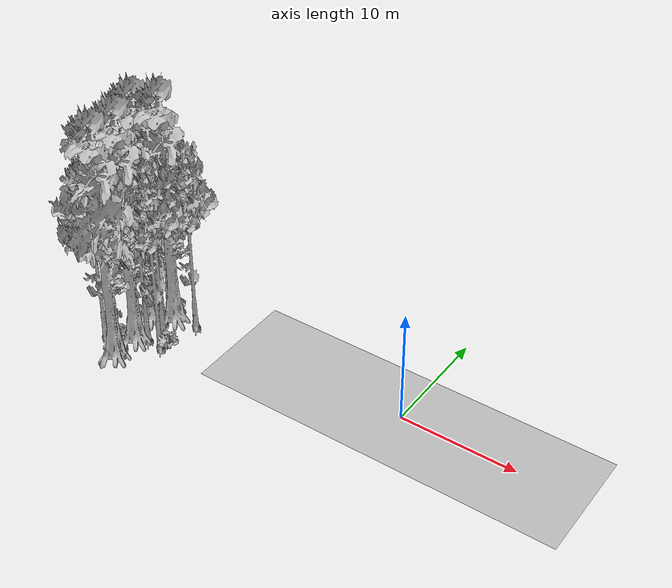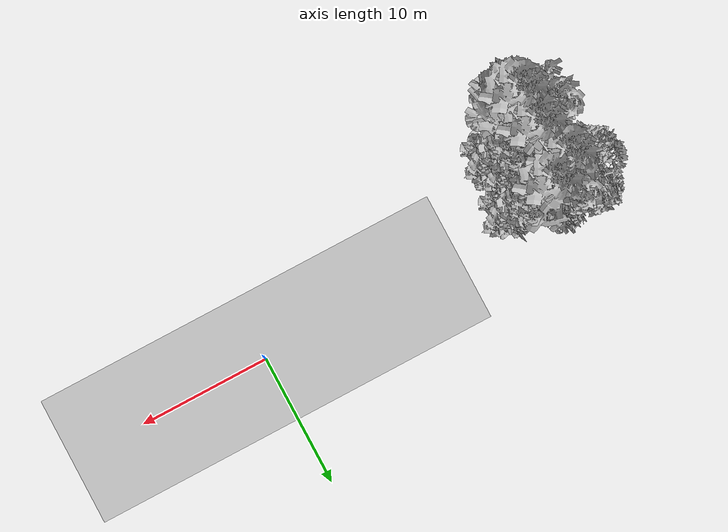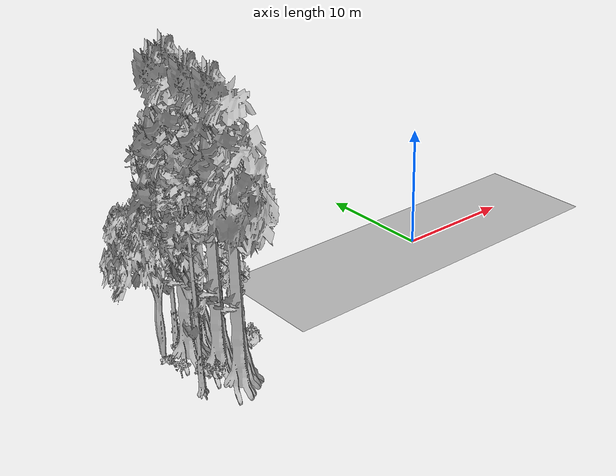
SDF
<sdf version="1.7">
 <world name="default">
  <model name="ground_plane">
   <static>1</static>
   <link name="link">
    <collision name="collision">
     <geometry><plane><normal>0 0 1</normal><size>100 100</size></plane></geometry>
     <surface><contact><ode><min_depth>0.01</min_depth><max_vel>0</max_vel></ode></contact></surface>
    </collision>
    <visual name="grass">
     <cast_shadows>0</cast_shadows>
     <geometry>
      <mesh>
       <scale>0.5814285714285714 0.18142857142857144 0.1</scale>
       <uri>file://grass_plane/meshes/grass_plane.dae</uri>
      </mesh>
     </geometry>
    </visual>
   </link>
  </model>
  <model name="Tree 10">
   <static>1</static>
   <pose>-21.879696404630316 -0.82176129421679 0 1.57079 -0 0</pose>
   <link name="link">
    <collision name="collision">
     <geometry><mesh><scale>3.5 5 3.5</scale><uri>model://tree_4/meshes/tree_4.obj</uri></mesh></geometry>
    </collision>
    <visual name="visual">
     <geometry><mesh><scale>3.5 5 3.5</scale><uri>model://tree_4/meshes/tree_4.obj</uri></mesh></geometry>
    </visual>
   </link>
  </model>
  <model name="Tree 22">
   <static>1</static>
   <pose>-21.982610655278286 -4.060572204806526 0 1.57079 -0 0</pose>
   <link name="link">
    <collision name="collision">
     <geometry><mesh><scale>3.5 5 3.5</scale><uri>model://tree_9/meshes/tree_9.obj</uri></mesh></geometry>
    </collision>
    <visual name="visual">
     <geometry><mesh><scale>3.5 5 3.5</scale><uri>model://tree_9/meshes/tree_9.obj</uri></mesh></geometry>
    </visual>
   </link>
  </model>
  <model name="Tree 30">
   <static>1</static>
   <pose>-25.03702476651312 -5.838302485965501 0 1.57079 -0 0</pose>
   <link name="link">
    <collision name="collision">
     <geometry><mesh><scale>3.5 5 3.5</scale><uri>model://tree_9/meshes/tree_9.obj</uri></mesh></geometry>
    </collision>
    <visual name="visual">
     <geometry><mesh><scale>3.5 5 3.5</scale><uri>model://tree_9/meshes/tree_9.obj</uri></mesh></geometry>
    </visual>
   </link>
  </model>
  <model name="Tree 44">
   <static>1</static>
   <pose>-19.851459571074663 -0.49956122231959554 0 1.57079 -0 0</pose>
   <link name="link">
    <collision name="collision">
     <geometry><mesh><scale>3.5 5 3.5</scale><uri>model://tree_9/meshes/tree_9.obj</uri></mesh></geometry>
    </collision>
    <visual name="visual">
     <geometry><mesh><scale>3.5 5 3.5</scale><uri>model://tree_9/meshes/tree_9.obj</uri></mesh></geometry>
    </visual>
   </link>
  </model>
  <model name="Tree 112">
   <static>1</static>
   <pose>-20.499247874361828 -4.275943029662148 0 1.57079 -0 0</pose>
   <link name="link">
    <collision name="collision">
     <geometry><mesh><scale>3.5 5 3.5</scale><uri>model://tree_9/meshes/tree_9.obj</uri></mesh></geometry>
    </collision>
    <visual name="visual">
     <geometry><mesh><scale>3.5 5 3.5</scale><uri>model://tree_9/meshes/tree_9.obj</uri></mesh></geometry>
    </visual>
   </link>
  </model>
  <model name="Tree 161">
   <static>1</static>
   <pose>-21.25542510160768 -2.957124591123323 0 1.57079 -0 0</pose>
   <link name="link">
    <collision name="collision">
     <geometry><mesh><scale>3.5 5 3.5</scale><uri>model://tree_9/meshes/tree_9.obj</uri></mesh></geometry>
    </collision>
    <visual name="visual">
     <geometry><mesh><scale>3.5 5 3.5</scale><uri>model://tree_9/meshes/tree_9.obj</uri></mesh></geometry>
    </visual>
   </link>
  </model>
  <model name="Tree 171">
   <static>1</static>
   <pose>-22.403731817072774 -1.6554641451145908 0 1.57079 -0 0</pose>
   <link name="link">
    <collision name="collision">
     <geometry><mesh><scale>3.5 5 3.5</scale><uri>model://tree_9/meshes/tree_9.obj</uri></mesh></geometry>
    </collision>
    <visual name="visual">
     <geometry><mesh><scale>3.5 5 3.5</scale><uri>model://tree_9/meshes/tree_9.obj</uri></mesh></geometry>
    </visual>
   </link>
  </model>
  <model name="Tree 179">
   <static>1</static>
   <pose>-25.01452560565559 -0.905474790789377 0 1.57079 -0 0</pose>
   <link name="link">
    <collision name="collision">
     <geometry><mesh><scale>3.5 5 3.5</scale><uri>model://tree_2/meshes/tree_2.obj</uri></mesh></geometry>
    </collision>
    <visual name="visual">
     <geometry><mesh><scale>3.5 5 3.5</scale><uri>model://tree_2/meshes/tree_2.obj</uri></mesh></geometry>
    </visual>
   </link>
  </model>
  <model name="Tree 225">
   <static>1</static>
   <pose>-23.257540559129225 0.08763103081743928 0 1.57079 -0 0</pose>
   <link name="link">
    <collision name="collision">
     <geometry><mesh><scale>3.5 5 3.5</scale><uri>model://tree_9/meshes/tree_9.obj</uri></mesh></geometry>
    </collision>
    <visual name="visual">
     <geometry><mesh><scale>3.5 5 3.5</scale><uri>model://tree_9/meshes/tree_9.obj</uri></mesh></geometry>
    </visual>
   </link>
  </model>
  <model name="Tree 300">
   <static>1</static>
   <pose>-22.76598010860878 -7.136607888229324 0 1.57079 -0 0</pose>
   <link name="link">
    <collision name="collision">
     <geometry><mesh><scale>3.5 5 3.5</scale><uri>model://tree_4/meshes/tree_4.obj</uri></mesh></geometry>
    </collision>
    <visual name="visual">
     <geometry><mesh><scale>3.5 5 3.5</scale><uri>model://tree_4/meshes/tree_4.obj</uri></mesh></geometry>
    </visual>
   </link>
  </model>
  <model name="Tree 336">
   <static>1</static>
   <pose>-24.884006157946292 -0.49257256441945607 0 1.57079 -0 0</pose>
   <link name="link">
    <collision name="collision">
     <geometry><mesh><scale>3.5 5 3.5</scale><uri>model://tree_2/meshes/tree_2.obj</uri></mesh></geometry>
    </collision>
    <visual name="visual">
     <geometry><mesh><scale>3.5 5 3.5</scale><uri>model://tree_2/meshes/tree_2.obj</uri></mesh></geometry>
    </visual>
   </link>
  </model>
  <model name="Tree 406">
   <static>1</static>
   <pose>-22.774944266580892 -4.682115500742471 0 1.57079 -0 0</pose>
   <link name="link">
    <collision name="collision">
     <geometry><mesh><scale>3.5 5 3.5</scale><uri>model://tree_4/meshes/tree_4.obj</uri></mesh></geometry>
    </collision>
    <visual name="visual">
     <geometry><mesh><scale>3.5 5 3.5</scale><uri>model://tree_4/meshes/tree_4.obj</uri></mesh></geometry>
    </visual>
   </link>
  </model>
  <model name="Tree 409">
   <static>1</static>
   <pose>-23.51418640622949 -1.9474277549941714 0 1.57079 -0 0</pose>
   <link name="link">
    <collision name="collision">
     <geometry><mesh><scale>3.5 5 3.5</scale><uri>model://tree_4/meshes/tree_4.obj</uri></mesh></geometry>
    </collision>
    <visual name="visual">
     <geometry><mesh><scale>3.5 5 3.5</scale><uri>model://tree_4/meshes/tree_4.obj</uri></mesh></geometry>
    </visual>
   </link>
  </model>
  <model name="Bush 21">
   <static>1</static>
   <pose>-25.09679876955792 -1.701875033062974 0 1.57079 -0 0</pose>
   <link name="link">
    <collision name="collision">
     <geometry><mesh><scale>2 2 2</scale><uri>model://bush_2/meshes/bush_2.obj</uri></mesh></geometry>
     <surface><contact><collide_without_contact>false</collide_without_contact></contact></surface>
    </collision>
    <visual name="visual">
     <geometry><mesh><scale>2 2 2</scale><uri>model://bush_2/meshes/bush_2.obj</uri></mesh></geometry>
    </visual>
   </link>
  </model>
  <model name="Bush 30">
   <static>1</static>
   <pose>-23.551033019146658 -5.708413060450933 0 1.57079 -0 0</pose>
   <link name="link">
    <collision name="collision">
     <geometry><mesh><scale>2 2 2</scale><uri>model://bush_4/meshes/bush_4.obj</uri></mesh></geometry>
     <surface><contact><collide_without_contact>false</collide_without_contact></contact></surface>
    </collision>
    <visual name="visual">
     <geometry><mesh><scale>2 2 2</scale><uri>model://bush_4/meshes/bush_4.obj</uri></mesh></geometry>
    </visual>
   </link>
  </model>
  <model name="Bush 72">
   <static>1</static>
   <pose>-22.46938019415706 0.6222823743175159 0 1.57079 -0 0</pose>
   <link name="link">
    <collision name="collision">
     <geometry><mesh><scale>2 2 2</scale><uri>model://bush_3/meshes/bush_3.obj</uri></mesh></geometry>
     <surface><contact><collide_without_contact>false</collide_without_contact></contact></surface>
    </collision>
    <visual name="visual">
     <geometry><mesh><scale>2 2 2</scale><uri>model://bush_3/meshes/bush_3.obj</uri></mesh></geometry>
    </visual>
   </link>
  </model>
  <model name="Bush 160">
   <static>1</static>
   <pose>-23.728758570296915 -1.3405218024542176 0 1.57079 -0 0</pose>
   <link name="link">
    <collision name="collision">
     <geometry><mesh><scale>2 2 2</scale><uri>model://bush_4/meshes/bush_4.obj</uri></mesh></geometry>
     <surface><contact><collide_without_contact>false</collide_without_contact></contact></surface>
    </collision>
    <visual name="visual">
     <geometry><mesh><scale>2 2 2</scale><uri>model://bush_4/meshes/bush_4.obj</uri></mesh></geometry>
    </visual>
   </link>
  </model>
  <model name="Bush 161">
   <static>1</static>
   <pose>-19.81632243774731 -4.216767249962125 0 1.57079 -0 0</pose>
   <link name="link">
    <collision name="collision">
     <geometry><mesh><scale>2 2 2</scale><uri>model://bush_1/meshes/bush_1.obj</uri></mesh></geometry>
     <surface><contact><collide_without_contact>false</collide_without_contact></contact></surface>
    </collision>
    <visual name="visual">
     <geometry><mesh><scale>2 2 2</scale><uri>model://bush_1/meshes/bush_1.obj</uri></mesh></geometry>
    </visual>
   </link>
  </model>
  <model name="Bush 184">
   <static>1</static>
   <pose>-25.406740120794264 -3.9815098492453096 0 1.57079 -0 0</pose>
   <link name="link">
    <collision name="collision">
     <geometry><mesh><scale>2 2 2</scale><uri>model://bush_5/meshes/bush_5.obj</uri></mesh></geometry>
     <surface><contact><collide_without_contact>false</collide_without_contact></contact></surface>
    </collision>
    <visual name="visual">
     <geometry><mesh><scale>2 2 2</scale><uri>model://bush_5/meshes/bush_5.obj</uri></mesh></geometry>
    </visual>
   </link>
  </model>
  <model name="Bush 213">
   <static>1</static>
   <pose>-23.473290958099952 -3.613391786092807 0 1.57079 -0 0</pose>
   <link name="link">
    <collision name="collision">
     <geometry><mesh><scale>2 2 2</scale><uri>model://bush_2/meshes/bush_2.obj</uri></mesh></geometry>
     <surface><contact><collide_without_contact>false</collide_without_contact></contact></surface>
    </collision>
    <visual name="visual">
     <geometry><mesh><scale>2 2 2</scale><uri>model://bush_2/meshes/bush_2.obj</uri></mesh></geometry>
    </visual>
   </link>
  </model>
  <model name="Bush 255">
   <static>1</static>
   <pose>-22.144038032784653 -7.003187686818329 0 1.57079 -0 0</pose>
   <link name="link">
    <collision name="collision">
     <geometry><mesh><scale>2 2 2</scale><uri>model://bush_3/meshes/bush_3.obj</uri></mesh></geometry>
     <surface><contact><collide_without_contact>false</collide_without_contact></contact></surface>
    </collision>
    <visual name="visual">
     <geometry><mesh><scale>2 2 2</scale><uri>model://bush_3/meshes/bush_3.obj</uri></mesh></geometry>
    </visual>
   </link>
  </model>
  <model name="Bush 303">
   <static>1</static>
   <pose>-24.072072475816814 -4.832224765140857 0 1.57079 -0 0</pose>
   <link name="link">
    <collision name="collision">
     <geometry><mesh><scale>2 2 2</scale><uri>model://bush_3/meshes/bush_3.obj</uri></mesh></geometry>
     <surface><contact><collide_without_contact>false</collide_without_contact></contact></surface>
    </collision>
    <visual name="visual">
     <geometry><mesh><scale>2 2 2</scale><uri>model://bush_3/meshes/bush_3.obj</uri></mesh></geometry>
    </visual>
   </link>
  </model>
 </world>
</sdf>
